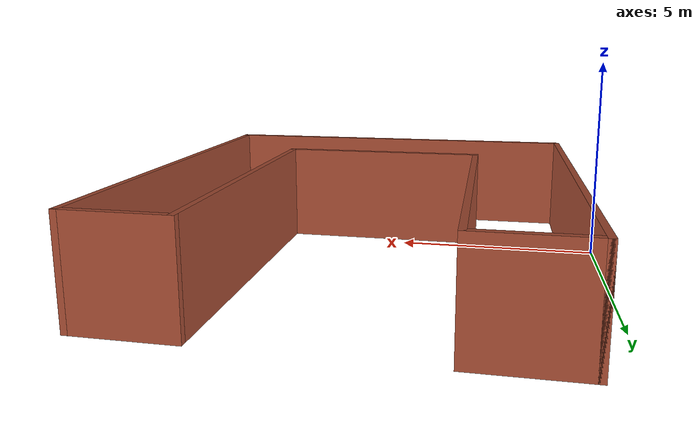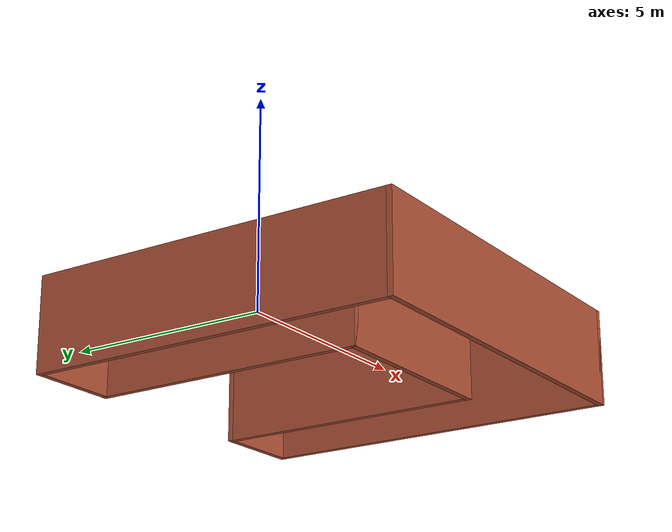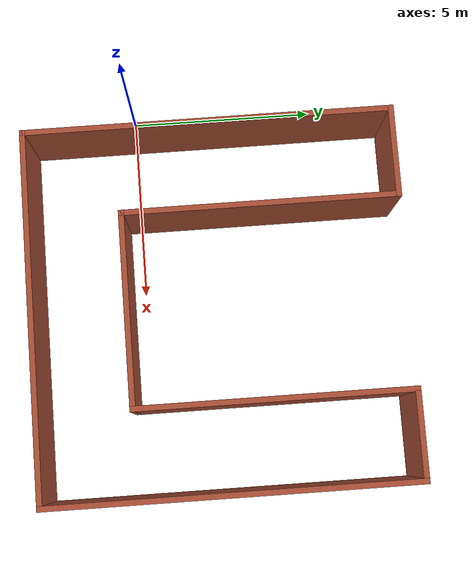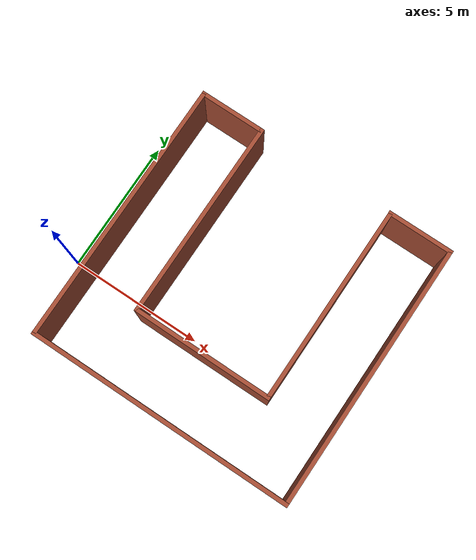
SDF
<?xml version='1.0'?>
<sdf version='1.6'>
  <model name='oficina'>
    <pose frame=''>5.3475 2.045 0 0 -0 0</pose>
    <link name='Wall_0'>
      <collision name='Wall_0_Collision'>
        <geometry>
          <box>
            <size>10 0.15 2.5</size>
          </box>
        </geometry>
        <pose frame=''>0 0 1.25 0 -0 0</pose>
      </collision>
      <visual name='Wall_0_Visual'>
        <pose frame=''>0 0 1.25 0 -0 0</pose>
        <geometry>
          <box>
            <size>10 0.15 2.5</size>
          </box>
        </geometry>
        <material>
          <script>
            <uri>file://media/materials/scripts/gazebo.material</uri>
            <name>Gazebo/Bricks</name>
          </script>
          <ambient>1 1 1 1</ambient>
        </material>
        <meta>
          <layer>0</layer>
        </meta>
      </visual>
      <pose frame=''>-4.5775 0 0 0 -0 1.5708</pose>
    </link>
    <link name='Wall_12'>
      <collision name='Wall_12_Collision'>
        <geometry>
          <box>
            <size>10 0.15 2.5</size>
          </box>
        </geometry>
        <pose frame=''>0 0 1.25 0 -0 0</pose>
      </collision>
      <visual name='Wall_12_Visual'>
        <pose frame=''>0 0 1.25 0 -0 0</pose>
        <geometry>
          <box>
            <size>10 0.15 2.5</size>
          </box>
        </geometry>
        <material>
          <script>
            <uri>file://media/materials/scripts/gazebo.material</uri>
            <name>Gazebo/Bricks</name>
          </script>
          <ambient>1 1 1 1</ambient>
        </material>
        <meta>
          <layer>0</layer>
        </meta>
      </visual>
      <pose frame=''>5.2725 0 0 0 -0 1.5708</pose>
    </link>
    <link name='Wall_14'>
      <collision name='Wall_14_Collision'>
        <geometry>
          <box>
            <size>2.5 0.15 2.5</size>
          </box>
        </geometry>
        <pose frame=''>0 0 1.25 0 -0 0</pose>
      </collision>
      <visual name='Wall_14_Visual'>
        <pose frame=''>0 0 1.25 0 -0 0</pose>
        <geometry>
          <box>
            <size>2.5 0.15 2.5</size>
          </box>
        </geometry>
        <material>
          <script>
            <uri>file://media/materials/scripts/gazebo.material</uri>
            <name>Gazebo/Bricks</name>
          </script>
          <ambient>1 1 1 1</ambient>
        </material>
        <meta>
          <layer>0</layer>
        </meta>
      </visual>
      <pose frame=''>4.0975 4.925 0 0 -0 3.14159</pose>
    </link>
    <link name='Wall_16'>
      <collision name='Wall_16_Collision'>
        <geometry>
          <box>
            <size>7.5 0.15 2.5</size>
          </box>
        </geometry>
        <pose frame=''>0 0 1.25 0 -0 0</pose>
      </collision>
      <visual name='Wall_16_Visual'>
        <pose frame=''>0 0 1.25 0 -0 0</pose>
        <geometry>
          <box>
            <size>7.5 0.15 2.5</size>
          </box>
        </geometry>
        <material>
          <script>
            <uri>file://media/materials/scripts/gazebo.material</uri>
            <name>Gazebo/Bricks</name>
          </script>
          <ambient>1 1 1 1</ambient>
        </material>
        <meta>
          <layer>0</layer>
        </meta>
      </visual>
      <pose frame=''>-2.2275 1.25 0 0 -0 -1.5708</pose>
    </link>
    <link name='Wall_18'>
      <collision name='Wall_18_Collision'>
        <geometry>
          <box>
            <size>7.5 0.15 2.5</size>
          </box>
        </geometry>
        <pose frame=''>0 0 1.25 0 -0 0</pose>
      </collision>
      <visual name='Wall_18_Visual'>
        <pose frame=''>0 0 1.25 0 -0 0</pose>
        <geometry>
          <box>
            <size>7.5 0.15 2.5</size>
          </box>
        </geometry>
        <material>
          <script>
            <uri>file://media/materials/scripts/gazebo.material</uri>
            <name>Gazebo/Bricks</name>
          </script>
          <ambient>1 1 1 1</ambient>
        </material>
        <meta>
          <layer>0</layer>
        </meta>
      </visual>
      <pose frame=''>2.9225 1.25 0 0 -0 -1.5708</pose>
    </link>
    <link name='Wall_2'>
      <collision name='Wall_2_Collision'>
        <geometry>
          <box>
            <size>10 0.15 2.5</size>
          </box>
        </geometry>
        <pose frame=''>0 0 1.25 0 -0 0</pose>
      </collision>
      <visual name='Wall_2_Visual'>
        <pose frame=''>0 0 1.25 0 -0 0</pose>
        <geometry>
          <box>
            <size>10 0.15 2.5</size>
          </box>
        </geometry>
        <material>
          <script>
            <uri>file://media/materials/scripts/gazebo.material</uri>
            <name>Gazebo/Bricks</name>
          </script>
          <ambient>0.760784 0.662745 0.627451 1</ambient>
        </material>
        <meta>
          <layer>0</layer>
        </meta>
      </visual>
      <pose frame=''>0.3475 -4.925 0 0 -0 0</pose>
    </link>
    <link name='Wall_20'>
      <collision name='Wall_20_Collision'>
        <geometry>
          <box>
            <size>5.3 0.15 2.5</size>
          </box>
        </geometry>
        <pose frame=''>0 0 1.25 0 -0 0</pose>
      </collision>
      <visual name='Wall_20_Visual'>
        <pose frame=''>0 0 1.25 0 -0 0</pose>
        <geometry>
          <box>
            <size>5.3 0.15 2.5</size>
          </box>
        </geometry>
        <material>
          <script>
            <uri>file://media/materials/scripts/gazebo.material</uri>
            <name>Gazebo/Bricks</name>
          </script>
          <ambient>1 1 1 1</ambient>
        </material>
        <meta>
          <layer>0</layer>
        </meta>
      </visual>
      <pose frame=''>0.3475 -2.425 0 0 -0 0</pose>
    </link>
    <link name='Wall_8'>
      <collision name='Wall_8_Collision'>
        <geometry>
          <box>
            <size>2.5 0.15 2.5</size>
          </box>
        </geometry>
        <pose frame=''>0 0 1.25 0 -0 0</pose>
      </collision>
      <visual name='Wall_8_Visual'>
        <pose frame=''>0 0 1.25 0 -0 0</pose>
        <geometry>
          <box>
            <size>2.5 0.15 2.5</size>
          </box>
        </geometry>
        <material>
          <script>
            <uri>file://media/materials/scripts/gazebo.material</uri>
            <name>Gazebo/Bricks</name>
          </script>
          <ambient>1 1 1 1</ambient>
        </material>
        <meta>
          <layer>0</layer>
        </meta>
      </visual>
      <pose frame=''>-3.4025 4.925 0 0 -0 0</pose>
    </link>
    <static>1</static>
  </model>
</sdf>
